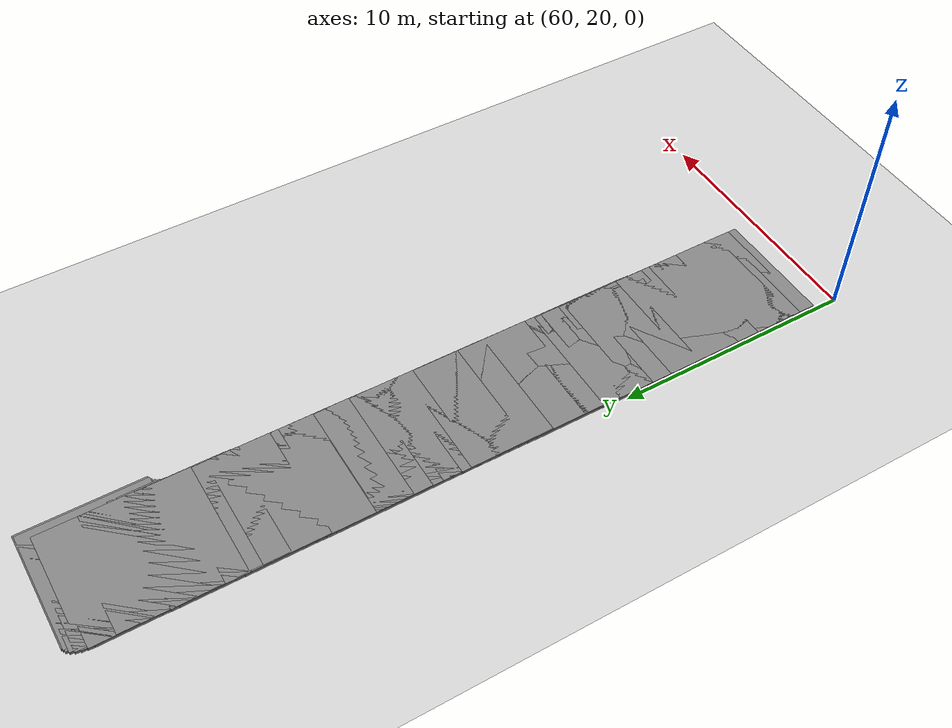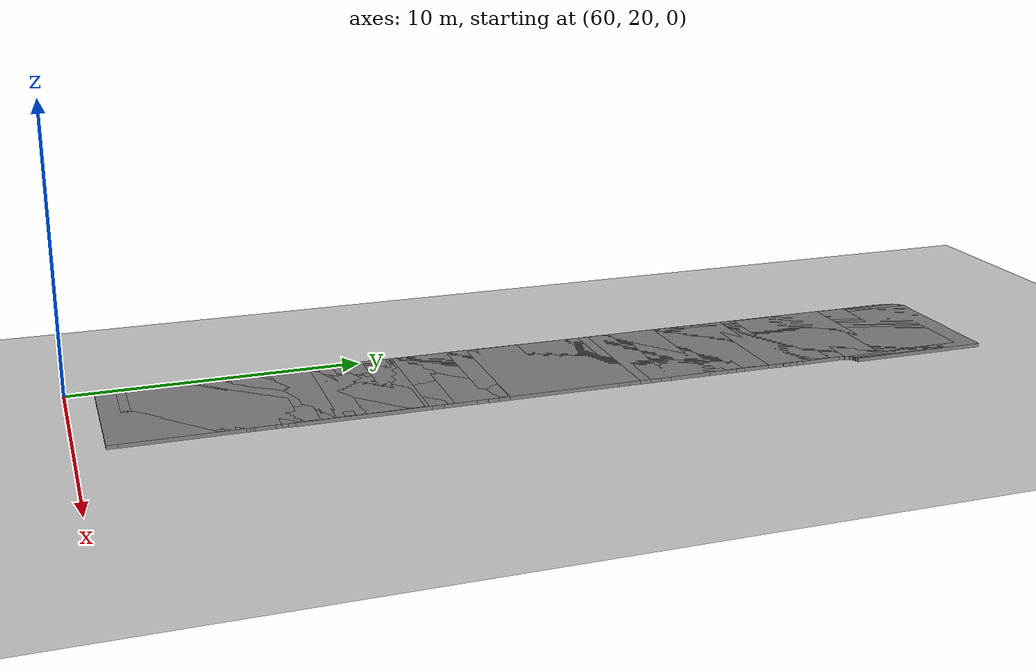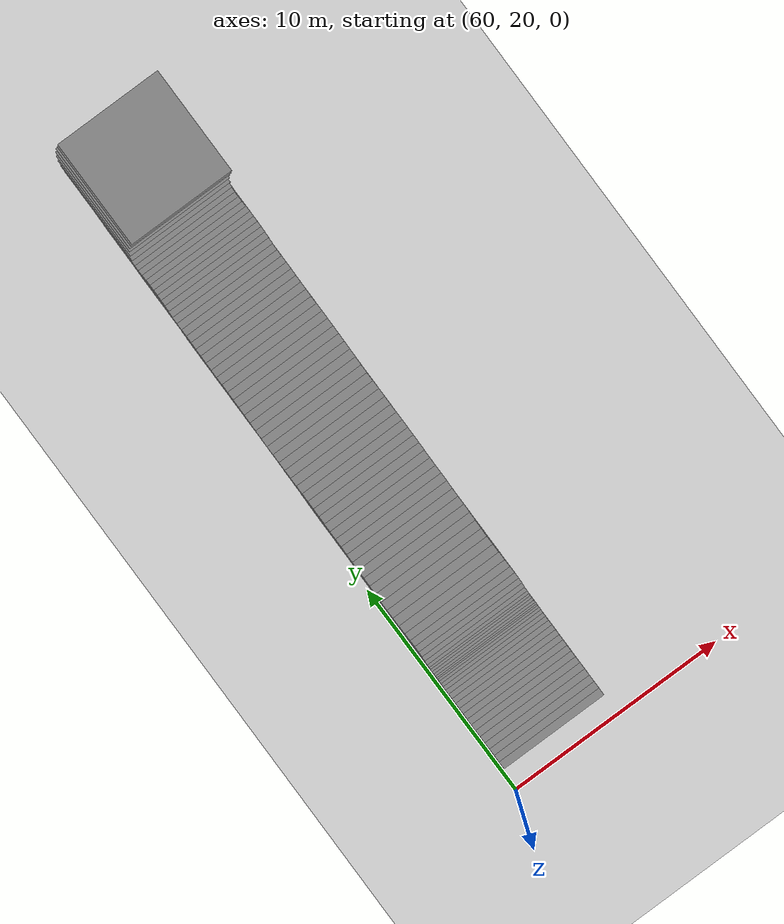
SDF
<sdf version="1.6">
 <world name="default">
  <include><uri>model://sun</uri></include>
  <include><uri>model://ground_plane</uri></include>
  <model name="road_segment_360">
   <static>true</static>
   <link name="link">
    <visual name="visual">
     <geometry><box><size>5.0 5.0 0.2</size></box></geometry>
     <material><ambient>0.5 0.5 0.5 1</ambient><diffuse>0.5 0.5 0.5 1</diffuse></material>
     <pose>63.15771334038004 49.263299828388355 0.0 0 0 0</pose>
    </visual>
    <collision name="collision">
     <geometry><box><size>5.0 5.0 0.2</size></box></geometry>
     <pose>63.15771334038004 49.263299828388355 0.0 0 0 0</pose>
    </collision>
   </link>
  </model>
  <model name="road_segment_361">
   <static>true</static>
   <link name="link">
    <visual name="visual">
     <geometry><box><size>5.0 5.0 0.2</size></box></geometry>
     <material><ambient>0.5 0.5 0.5 1</ambient><diffuse>0.5 0.5 0.5 1</diffuse></material>
     <pose>63.09268875512027 49.217945574894685 0.0 0 0 0</pose>
    </visual>
    <collision name="collision">
     <geometry><box><size>5.0 5.0 0.2</size></box></geometry>
     <pose>63.09268875512027 49.217945574894685 0.0 0 0 0</pose>
    </collision>
   </link>
  </model>
  <model name="road_segment_362">
   <static>true</static>
   <link name="link">
    <visual name="visual">
     <geometry><box><size>5.0 5.0 0.2</size></box></geometry>
     <material><ambient>0.5 0.5 0.5 1</ambient><diffuse>0.5 0.5 0.5 1</diffuse></material>
     <pose>62.99664537474874 49.17463430579471 0.0 0 0 0</pose>
    </visual>
    <collision name="collision">
     <geometry><box><size>5.0 5.0 0.2</size></box></geometry>
     <pose>62.99664537474874 49.17463430579471 0.0 0 0 0</pose>
    </collision>
   </link>
  </model>
  <model name="road_segment_363">
   <static>true</static>
   <link name="link">
    <visual name="visual">
     <geometry><box><size>5.0 5.0 0.2</size></box></geometry>
     <material><ambient>0.5 0.5 0.5 1</ambient><diffuse>0.5 0.5 0.5 1</diffuse></material>
     <pose>62.910022517359565 49.07452807060507 0.0 0 0 0</pose>
    </visual>
    <collision name="collision">
     <geometry><box><size>5.0 5.0 0.2</size></box></geometry>
     <pose>62.910022517359565 49.07452807060507 0.0 0 0 0</pose>
    </collision>
   </link>
  </model>
  <model name="road_segment_364">
   <static>true</static>
   <link name="link">
    <visual name="visual">
     <geometry><box><size>5.0 5.0 0.2</size></box></geometry>
     <material><ambient>0.5 0.5 0.5 1</ambient><diffuse>0.5 0.5 0.5 1</diffuse></material>
     <pose>62.835807177988976 48.92212143498897 0.0 0 0 0</pose>
    </visual>
    <collision name="collision">
     <geometry><box><size>5.0 5.0 0.2</size></box></geometry>
     <pose>62.835807177988976 48.92212143498897 0.0 0 0 0</pose>
    </collision>
   </link>
  </model>
  <model name="road_segment_365">
   <static>true</static>
   <link name="link">
    <visual name="visual">
     <geometry><box><size>5.0 5.0 0.2</size></box></geometry>
     <material><ambient>0.5 0.5 0.5 1</ambient><diffuse>0.5 0.5 0.5 1</diffuse></material>
     <pose>62.783190110747796 48.7251777396454 0.0 0 0 0</pose>
    </visual>
    <collision name="collision">
     <geometry><box><size>5.0 5.0 0.2</size></box></geometry>
     <pose>62.783190110747796 48.7251777396454 0.0 0 0 0</pose>
    </collision>
   </link>
  </model>
  <model name="road_segment_366">
   <static>true</static>
   <link name="link">
    <visual name="visual">
     <geometry><box><size>5.0 5.0 0.2</size></box></geometry>
     <material><ambient>0.5 0.5 0.5 1</ambient><diffuse>0.5 0.5 0.5 1</diffuse></material>
     <pose>62.75171177795824 48.50616981286149 0.0 0 0 0</pose>
    </visual>
    <collision name="collision">
     <geometry><box><size>5.0 5.0 0.2</size></box></geometry>
     <pose>62.75171177795824 48.50616981286149 0.0 0 0 0</pose>
    </collision>
   </link>
  </model>
  <model name="road_segment_367">
   <static>true</static>
   <link name="link">
    <visual name="visual">
     <geometry><box><size>5.0 5.0 0.2</size></box></geometry>
     <material><ambient>0.5 0.5 0.5 1</ambient><diffuse>0.5 0.5 0.5 1</diffuse></material>
     <pose>62.74366986810719 48.272452398460366 0.0 0 0 0</pose>
    </visual>
    <collision name="collision">
     <geometry><box><size>5.0 5.0 0.2</size></box></geometry>
     <pose>62.74366986810719 48.272452398460366 0.0 0 0 0</pose>
    </collision>
   </link>
  </model>
  <model name="road_segment_368">
   <static>true</static>
   <link name="link">
    <visual name="visual">
     <geometry><box><size>5.0 5.0 0.2</size></box></geometry>
     <material><ambient>0.5 0.5 0.5 1</ambient><diffuse>0.5 0.5 0.5 1</diffuse></material>
     <pose>62.74826524514627 48.02647707771157 0.0 0 0 0</pose>
    </visual>
    <collision name="collision">
     <geometry><box><size>5.0 5.0 0.2</size></box></geometry>
     <pose>62.74826524514627 48.02647707771157 0.0 0 0 0</pose>
    </collision>
   </link>
  </model>
  <model name="road_segment_369">
   <static>true</static>
   <link name="link">
    <visual name="visual">
     <geometry><box><size>5.0 5.0 0.2</size></box></geometry>
     <material><ambient>0.5 0.5 0.5 1</ambient><diffuse>0.5 0.5 0.5 1</diffuse></material>
     <pose>62.759064381227304 47.77968456321109 0.0 0 0 0</pose>
    </visual>
    <collision name="collision">
     <geometry><box><size>5.0 5.0 0.2</size></box></geometry>
     <pose>62.759064381227304 47.77968456321109 0.0 0 0 0</pose>
    </collision>
   </link>
  </model>
  <model name="road_segment_370">
   <static>true</static>
   <link name="link">
    <visual name="visual">
     <geometry><box><size>5.0 5.0 0.2</size></box></geometry>
     <material><ambient>0.5 0.5 0.5 1</ambient><diffuse>0.5 0.5 0.5 1</diffuse></material>
     <pose>62.7694039795979 47.523494320501044 0.0 0 0 0</pose>
    </visual>
    <collision name="collision">
     <geometry><box><size>5.0 5.0 0.2</size></box></geometry>
     <pose>62.7694039795979 47.523494320501044 0.0 0 0 0</pose>
    </collision>
   </link>
  </model>
  <model name="road_segment_371">
   <static>true</static>
   <link name="link">
    <visual name="visual">
     <geometry><box><size>5.0 5.0 0.2</size></box></geometry>
     <material><ambient>0.5 0.5 0.5 1</ambient><diffuse>0.5 0.5 0.5 1</diffuse></material>
     <pose>62.774229125508526 47.27261583721317 0.0 0 0 0</pose>
    </visual>
    <collision name="collision">
     <geometry><box><size>5.0 5.0 0.2</size></box></geometry>
     <pose>62.774229125508526 47.27261583721317 0.0 0 0 0</pose>
    </collision>
   </link>
  </model>
  <model name="road_segment_372">
   <static>true</static>
   <link name="link">
    <visual name="visual">
     <geometry><box><size>5.0 5.0 0.2</size></box></geometry>
     <material><ambient>0.5 0.5 0.5 1</ambient><diffuse>0.5 0.5 0.5 1</diffuse></material>
     <pose>62.77262074353832 47.01928577265576 0.0 0 0 0</pose>
    </visual>
    <collision name="collision">
     <geometry><box><size>5.0 5.0 0.2</size></box></geometry>
     <pose>62.77262074353832 47.01928577265576 0.0 0 0 0</pose>
    </collision>
   </link>
  </model>
  <model name="road_segment_373">
   <static>true</static>
   <link name="link">
    <visual name="visual">
     <geometry><box><size>5.0 5.0 0.2</size></box></geometry>
     <material><ambient>0.5 0.5 0.5 1</ambient><diffuse>0.5 0.5 0.5 1</diffuse></material>
     <pose>62.77055282385767 46.76350412682881 0.0 0 0 0</pose>
    </visual>
    <collision name="collision">
     <geometry><box><size>5.0 5.0 0.2</size></box></geometry>
     <pose>62.77055282385767 46.76350412682881 0.0 0 0 0</pose>
    </collision>
   </link>
  </model>
  <model name="road_segment_374">
   <static>true</static>
   <link name="link">
    <visual name="visual">
     <geometry><box><size>5.0 5.0 0.2</size></box></geometry>
     <material><ambient>0.5 0.5 0.5 1</ambient><diffuse>0.5 0.5 0.5 1</diffuse></material>
     <pose>62.766187215657474 46.4987333496754 0.0 0 0 0</pose>
    </visual>
    <collision name="collision">
     <geometry><box><size>5.0 5.0 0.2</size></box></geometry>
     <pose>62.766187215657474 46.4987333496754 0.0 0 0 0</pose>
    </collision>
   </link>
  </model>
  <model name="road_segment_375">
   <static>true</static>
   <link name="link">
    <visual name="visual">
     <geometry><box><size>5.0 5.0 0.2</size></box></geometry>
     <material><ambient>0.5 0.5 0.5 1</ambient><diffuse>0.5 0.5 0.5 1</diffuse></material>
     <pose>62.757226230418205 46.220887472422625 0.0 0 0 0</pose>
    </visual>
    <collision name="collision">
     <geometry><box><size>5.0 5.0 0.2</size></box></geometry>
     <pose>62.757226230418205 46.220887472422625 0.0 0 0 0</pose>
    </collision>
   </link>
  </model>
  <model name="road_segment_376">
   <static>true</static>
   <link name="link">
    <visual name="visual">
     <geometry><box><size>5.0 5.0 0.2</size></box></geometry>
     <material><ambient>0.5 0.5 0.5 1</ambient><diffuse>0.5 0.5 0.5 1</diffuse></material>
     <pose>62.738155415647235 45.9373212388646 0.0 0 0 0</pose>
    </visual>
    <collision name="collision">
     <geometry><box><size>5.0 5.0 0.2</size></box></geometry>
     <pose>62.738155415647235 45.9373212388646 0.0 0 0 0</pose>
    </collision>
   </link>
  </model>
  <model name="road_segment_377">
   <static>true</static>
   <link name="link">
    <visual name="visual">
     <geometry><box><size>5.0 5.0 0.2</size></box></geometry>
     <material><ambient>0.5 0.5 0.5 1</ambient><diffuse>0.5 0.5 0.5 1</diffuse></material>
     <pose>62.726207435306435 45.636185339543985 0.0 0 0 0</pose>
    </visual>
    <collision name="collision">
     <geometry><box><size>5.0 5.0 0.2</size></box></geometry>
     <pose>62.726207435306435 45.636185339543985 0.0 0 0 0</pose>
    </collision>
   </link>
  </model>
  <model name="road_segment_378">
   <static>true</static>
   <link name="link">
    <visual name="visual">
     <geometry><box><size>5.0 5.0 0.2</size></box></geometry>
     <material><ambient>0.5 0.5 0.5 1</ambient><diffuse>0.5 0.5 0.5 1</diffuse></material>
     <pose>62.72299067139866 45.3317806651949 0.0 0 0 0</pose>
    </visual>
    <collision name="collision">
     <geometry><box><size>5.0 5.0 0.2</size></box></geometry>
     <pose>62.72299067139866 45.3317806651949 0.0 0 0 0</pose>
    </collision>
   </link>
  </model>
  <model name="road_segment_379">
   <static>true</static>
   <link name="link">
    <visual name="visual">
     <geometry><box><size>5.0 5.0 0.2</size></box></geometry>
     <material><ambient>0.5 0.5 0.5 1</ambient><diffuse>0.5 0.5 0.5 1</diffuse></material>
     <pose>62.72965396811839 45.01307510010443 0.0 0 0 0</pose>
    </visual>
    <collision name="collision">
     <geometry><box><size>5.0 5.0 0.2</size></box></geometry>
     <pose>62.72965396811839 45.01307510010443 0.0 0 0 0</pose>
    </collision>
   </link>
  </model>
  <model name="road_segment_380">
   <static>true</static>
   <link name="link">
    <visual name="visual">
     <geometry><box><size>5.0 5.0 0.2</size></box></geometry>
     <material><ambient>0.5 0.5 0.5 1</ambient><diffuse>0.5 0.5 0.5 1</diffuse></material>
     <pose>62.72919443040795 44.689466372474904 0.0 0 0 0</pose>
    </visual>
    <collision name="collision">
     <geometry><box><size>5.0 5.0 0.2</size></box></geometry>
     <pose>62.72919443040795 44.689466372474904 0.0 0 0 0</pose>
    </collision>
   </link>
  </model>
  <model name="road_segment_381">
   <static>true</static>
   <link name="link">
    <visual name="visual">
     <geometry><box><size>5.0 5.0 0.2</size></box></geometry>
     <material><ambient>0.5 0.5 0.5 1</ambient><diffuse>0.5 0.5 0.5 1</diffuse></material>
     <pose>62.724139515658436 44.35891149791985 0.0 0 0 0</pose>
    </visual>
    <collision name="collision">
     <geometry><box><size>5.0 5.0 0.2</size></box></geometry>
     <pose>62.724139515658436 44.35891149791985 0.0 0 0 0</pose>
    </collision>
   </link>
  </model>
  <model name="road_segment_382">
   <static>true</static>
   <link name="link">
    <visual name="visual">
     <geometry><box><size>5.0 5.0 0.2</size></box></geometry>
     <material><ambient>0.5 0.5 0.5 1</ambient><diffuse>0.5 0.5 0.5 1</diffuse></material>
     <pose>62.718854832037366 44.02753942959861 0.0 0 0 0</pose>
    </visual>
    <collision name="collision">
     <geometry><box><size>5.0 5.0 0.2</size></box></geometry>
     <pose>62.718854832037366 44.02753942959861 0.0 0 0 0</pose>
    </collision>
   </link>
  </model>
  <model name="road_segment_383">
   <static>true</static>
   <link name="link">
    <visual name="visual">
     <geometry><box><size>5.0 5.0 0.2</size></box></geometry>
     <material><ambient>0.5 0.5 0.5 1</ambient><diffuse>0.5 0.5 0.5 1</diffuse></material>
     <pose>62.719544138586706 43.67573751736216 0.0 0 0 0</pose>
    </visual>
    <collision name="collision">
     <geometry><box><size>5.0 5.0 0.2</size></box></geometry>
     <pose>62.719544138586706 43.67573751736216 0.0 0 0 0</pose>
    </collision>
   </link>
  </model>
  <model name="road_segment_384">
   <static>true</static>
   <link name="link">
    <visual name="visual">
     <geometry><box><size>5.0 5.0 0.2</size></box></geometry>
     <material><ambient>0.5 0.5 0.5 1</ambient><diffuse>0.5 0.5 0.5 1</diffuse></material>
     <pose>62.714029686126736 43.32025823322866 0.0 0 0 0</pose>
    </visual>
    <collision name="collision">
     <geometry><box><size>5.0 5.0 0.2</size></box></geometry>
     <pose>62.714029686126736 43.32025823322866 0.0 0 0 0</pose>
    </collision>
   </link>
  </model>
  <model name="road_segment_385">
   <static>true</static>
   <link name="link">
    <visual name="visual">
     <geometry><box><size>5.0 5.0 0.2</size></box></geometry>
     <material><ambient>0.5 0.5 0.5 1</ambient><diffuse>0.5 0.5 0.5 1</diffuse></material>
     <pose>62.70874500253832 42.961918770942525 0.0 0 0 0</pose>
    </visual>
    <collision name="collision">
     <geometry><box><size>5.0 5.0 0.2</size></box></geometry>
     <pose>62.70874500253832 42.961918770942525 0.0 0 0 0</pose>
    </collision>
   </link>
  </model>
  <model name="road_segment_386">
   <static>true</static>
   <link name="link">
    <visual name="visual">
     <geometry><box><size>5.0 5.0 0.2</size></box></geometry>
     <material><ambient>0.5 0.5 0.5 1</ambient><diffuse>0.5 0.5 0.5 1</diffuse></material>
     <pose>62.7158678369685 42.59418158045409 0.0 0 0 0</pose>
    </visual>
    <collision name="collision">
     <geometry><box><size>5.0 5.0 0.2</size></box></geometry>
     <pose>62.7158678369685 42.59418158045409 0.0 0 0 0</pose>
    </collision>
   </link>
  </model>
  <model name="road_segment_387">
   <static>true</static>
   <link name="link">
    <visual name="visual">
     <geometry><box><size>5.0 5.0 0.2</size></box></geometry>
     <material><ambient>0.5 0.5 0.5 1</ambient><diffuse>0.5 0.5 0.5 1</diffuse></material>
     <pose>62.718854832037366 42.21827245239812 0.0 0 0 0</pose>
    </visual>
    <collision name="collision">
     <geometry><box><size>5.0 5.0 0.2</size></box></geometry>
     <pose>62.718854832037366 42.21827245239812 0.0 0 0 0</pose>
    </collision>
   </link>
  </model>
  <model name="road_segment_388">
   <static>true</static>
   <link name="link">
    <visual name="visual">
     <geometry><box><size>5.0 5.0 0.2</size></box></geometry>
     <material><ambient>0.5 0.5 0.5 1</ambient><diffuse>0.5 0.5 0.5 1</diffuse></material>
     <pose>62.71770598777759 41.841546130590466 0.0 0 0 0</pose>
    </visual>
    <collision name="collision">
     <geometry><box><size>5.0 5.0 0.2</size></box></geometry>
     <pose>62.71770598777759 41.841546130590466 0.0 0 0 0</pose>
    </collision>
   </link>
  </model>
  <model name="road_segment_389">
   <static>true</static>
   <link name="link">
    <visual name="visual">
     <geometry><box><size>5.0 5.0 0.2</size></box></geometry>
     <material><ambient>0.5 0.5 0.5 1</ambient><diffuse>0.5 0.5 0.5 1</diffuse></material>
     <pose>62.71517853038651 41.46155103374709 0.0 0 0 0</pose>
    </visual>
    <collision name="collision">
     <geometry><box><size>5.0 5.0 0.2</size></box></geometry>
     <pose>62.71517853038651 41.46155103374709 0.0 0 0 0</pose>
    </collision>
   </link>
  </model>
  <model name="road_segment_390">
   <static>true</static>
   <link name="link">
    <visual name="visual">
     <geometry><box><size>5.0 5.0 0.2</size></box></geometry>
     <material><ambient>0.5 0.5 0.5 1</ambient><diffuse>0.5 0.5 0.5 1</diffuse></material>
     <pose>62.7115022287683 41.08114734003514 0.0 0 0 0</pose>
    </visual>
    <collision name="collision">
     <geometry><box><size>5.0 5.0 0.2</size></box></geometry>
     <pose>62.7115022287683 41.08114734003514 0.0 0 0 0</pose>
    </collision>
   </link>
  </model>
  <model name="road_segment_391">
   <static>true</static>
   <link name="link">
    <visual name="visual">
     <geometry><box><size>5.0 5.0 0.2</size></box></geometry>
     <material><ambient>0.5 0.5 0.5 1</ambient><diffuse>0.5 0.5 0.5 1</diffuse></material>
     <pose>62.70782592711745 40.69706627441162 0.0 0 0 0</pose>
    </visual>
    <collision name="collision">
     <geometry><box><size>5.0 5.0 0.2</size></box></geometry>
     <pose>62.70782592711745 40.69706627441162 0.0 0 0 0</pose>
    </collision>
   </link>
  </model>
  <model name="road_segment_392">
   <static>true</static>
   <link name="link">
    <visual name="visual">
     <geometry><box><size>5.0 5.0 0.2</size></box></geometry>
     <material><ambient>0.5 0.5 0.5 1</ambient><diffuse>0.5 0.5 0.5 1</diffuse></material>
     <pose>62.70024355497683 40.309716433766894 0.0 0 0 0</pose>
    </visual>
    <collision name="collision">
     <geometry><box><size>5.0 5.0 0.2</size></box></geometry>
     <pose>62.70024355497683 40.309716433766894 0.0 0 0 0</pose>
    </collision>
   </link>
  </model>
  <model name="road_segment_393">
   <static>true</static>
   <link name="link">
    <visual name="visual">
     <geometry><box><size>5.0 5.0 0.2</size></box></geometry>
     <material><ambient>0.5 0.5 0.5 1</ambient><diffuse>0.5 0.5 0.5 1</diffuse></material>
     <pose>62.692431413997326 39.9174634305831 0.0 0 0 0</pose>
    </visual>
    <collision name="collision">
     <geometry><box><size>5.0 5.0 0.2</size></box></geometry>
     <pose>62.692431413997326 39.9174634305831 0.0 0 0 0</pose>
    </collision>
   </link>
  </model>
  <model name="road_segment_394">
   <static>true</static>
   <link name="link">
    <visual name="visual">
     <geometry><box><size>5.0 5.0 0.2</size></box></geometry>
     <material><ambient>0.5 0.5 0.5 1</ambient><diffuse>0.5 0.5 0.5 1</diffuse></material>
     <pose>62.688065805797144 39.522758846122514 0.0 0 0 0</pose>
    </visual>
    <collision name="collision">
     <geometry><box><size>5.0 5.0 0.2</size></box></geometry>
     <pose>62.688065805797144 39.522758846122514 0.0 0 0 0</pose>
    </collision>
   </link>
  </model>
  <model name="road_segment_395">
   <static>true</static>
   <link name="link">
    <visual name="visual">
     <geometry><box><size>5.0 5.0 0.2</size></box></geometry>
     <material><ambient>0.5 0.5 0.5 1</ambient><diffuse>0.5 0.5 0.5 1</diffuse></material>
     <pose>62.68622765498804 39.12315109912285 0.0 0 0 0</pose>
    </visual>
    <collision name="collision">
     <geometry><box><size>5.0 5.0 0.2</size></box></geometry>
     <pose>62.68622765498804 39.12315109912285 0.0 0 0 0</pose>
    </collision>
   </link>
  </model>
  <model name="road_segment_396">
   <static>true</static>
   <link name="link">
    <visual name="visual">
     <geometry><box><size>5.0 5.0 0.2</size></box></geometry>
     <material><ambient>0.5 0.5 0.5 1</ambient><diffuse>0.5 0.5 0.5 1</diffuse></material>
     <pose>62.69197187628689 38.725586336524145 0.0 0 0 0</pose>
    </visual>
    <collision name="collision">
     <geometry><box><size>5.0 5.0 0.2</size></box></geometry>
     <pose>62.69197187628689 38.725586336524145 0.0 0 0 0</pose>
    </collision>
   </link>
  </model>
  <model name="road_segment_397">
   <static>true</static>
   <link name="link">
    <visual name="visual">
     <geometry><box><size>5.0 5.0 0.2</size></box></geometry>
     <material><ambient>0.5 0.5 0.5 1</ambient><diffuse>0.5 0.5 0.5 1</diffuse></material>
     <pose>62.693810027096 38.33455912396786 0.0 0 0 0</pose>
    </visual>
    <collision name="collision">
     <geometry><box><size>5.0 5.0 0.2</size></box></geometry>
     <pose>62.693810027096 38.33455912396786 0.0 0 0 0</pose>
    </collision>
   </link>
  </model>
  <model name="road_segment_398">
   <static>true</static>
   <link name="link">
    <visual name="visual">
     <geometry><box><size>5.0 5.0 0.2</size></box></geometry>
     <material><ambient>0.5 0.5 0.5 1</ambient><diffuse>0.5 0.5 0.5 1</diffuse></material>
     <pose>62.691742107448 37.93944594263144 0.0 0 0 0</pose>
    </visual>
    <collision name="collision">
     <geometry><box><size>5.0 5.0 0.2</size></box></geometry>
     <pose>62.691742107448 37.93944594263144 0.0 0 0 0</pose>
    </collision>
   </link>
  </model>
  <model name="road_segment_399">
   <static>true</static>
   <link name="link">
    <visual name="visual">
     <geometry><box><size>5.0 5.0 0.2</size></box></geometry>
     <material><ambient>0.5 0.5 0.5 1</ambient><diffuse>0.5 0.5 0.5 1</diffuse></material>
     <pose>62.69082303202712 37.54964452071717 0.0 0 0 0</pose>
    </visual>
    <collision name="collision">
     <geometry><box><size>5.0 5.0 0.2</size></box></geometry>
     <pose>62.69082303202712 37.54964452071717 0.0 0 0 0</pose>
    </collision>
   </link>
  </model>
  <model name="road_segment_400">
   <static>true</static>
   <link name="link">
    <visual name="visual">
     <geometry><box><size>5.0 5.0 0.2</size></box></geometry>
     <material><ambient>0.5 0.5 0.5 1</ambient><diffuse>0.5 0.5 0.5 1</diffuse></material>
     <pose>62.694958871388415 37.16433766445889 0.0 0 0 0</pose>
    </visual>
    <collision name="collision">
     <geometry><box><size>5.0 5.0 0.2</size></box></geometry>
     <pose>62.694958871388415 37.16433766445889 0.0 0 0 0</pose>
    </collision>
   </link>
  </model>
  <model name="road_segment_401">
   <static>true</static>
   <link name="link">
    <visual name="visual">
     <geometry><box><size>5.0 5.0 0.2</size></box></geometry>
     <material><ambient>0.5 0.5 0.5 1</ambient><diffuse>0.5 0.5 0.5 1</diffuse></material>
     <pose>62.69679702219753 36.785159761381706 0.0 0 0 0</pose>
    </visual>
    <collision name="collision">
     <geometry><box><size>5.0 5.0 0.2</size></box></geometry>
     <pose>62.69679702219753 36.785159761381706 0.0 0 0 0</pose>
    </collision>
   </link>
  </model>
  <model name="road_segment_402">
   <static>true</static>
   <link name="link">
    <visual name="visual">
     <geometry><box><size>5.0 5.0 0.2</size></box></geometry>
     <material><ambient>0.5 0.5 0.5 1</ambient><diffuse>0.5 0.5 0.5 1</diffuse></material>
     <pose>62.697026791036414 36.40843343956679 0.0 0 0 0</pose>
    </visual>
    <collision name="collision">
     <geometry><box><size>5.0 5.0 0.2</size></box></geometry>
     <pose>62.697026791036414 36.40843343956679 0.0 0 0 0</pose>
    </collision>
   </link>
  </model>
  <model name="road_segment_403">
   <static>true</static>
   <link name="link">
    <visual name="visual">
     <geometry><box><size>5.0 5.0 0.2</size></box></geometry>
     <material><ambient>0.5 0.5 0.5 1</ambient><diffuse>0.5 0.5 0.5 1</diffuse></material>
     <pose>62.69541840906621 36.03211571463498 0.0 0 0 0</pose>
    </visual>
    <collision name="collision">
     <geometry><box><size>5.0 5.0 0.2</size></box></geometry>
     <pose>62.69541840906621 36.03211571463498 0.0 0 0 0</pose>
    </collision>
   </link>
  </model>
  <model name="road_segment_404">
   <static>true</static>
   <link name="link">
    <visual name="visual">
     <geometry><box><size>5.0 5.0 0.2</size></box></geometry>
     <material><ambient>0.5 0.5 0.5 1</ambient><diffuse>0.5 0.5 0.5 1</diffuse></material>
     <pose>62.6935802582571 35.65702378033794 0.0 0 0 0</pose>
    </visual>
    <collision name="collision">
     <geometry><box><size>5.0 5.0 0.2</size></box></geometry>
     <pose>62.6935802582571 35.65702378033794 0.0 0 0 0</pose>
    </collision>
   </link>
  </model>
  <model name="road_segment_405">
   <static>true</static>
   <link name="link">
    <visual name="visual">
     <geometry><box><size>5.0 5.0 0.2</size></box></geometry>
     <material><ambient>0.5 0.5 0.5 1</ambient><diffuse>0.5 0.5 0.5 1</diffuse></material>
     <pose>62.68645742382694 35.282340442916734 0.0 0 0 0</pose>
    </visual>
    <collision name="collision">
     <geometry><box><size>5.0 5.0 0.2</size></box></geometry>
     <pose>62.68645742382694 35.282340442916734 0.0 0 0 0</pose>
    </collision>
   </link>
  </model>
  <model name="road_segment_406">
   <static>true</static>
   <link name="link">
    <visual name="visual">
     <geometry><box><size>5.0 5.0 0.2</size></box></geometry>
     <material><ambient>0.5 0.5 0.5 1</ambient><diffuse>0.5 0.5 0.5 1</diffuse></material>
     <pose>62.68324065988651 34.90275394296371 0.0 0 0 0</pose>
    </visual>
    <collision name="collision">
     <geometry><box><size>5.0 5.0 0.2</size></box></geometry>
     <pose>62.68324065988651 34.90275394296371 0.0 0 0 0</pose>
    </collision>
   </link>
  </model>
  <model name="road_segment_407">
   <static>true</static>
   <link name="link">
    <visual name="visual">
     <geometry><box><size>5.0 5.0 0.2</size></box></geometry>
     <material><ambient>0.5 0.5 0.5 1</ambient><diffuse>0.5 0.5 0.5 1</diffuse></material>
     <pose>62.68324065988651 34.52194165236866 0.0 0 0 0</pose>
    </visual>
    <collision name="collision">
     <geometry><box><size>5.0 5.0 0.2</size></box></geometry>
     <pose>62.68324065988651 34.52194165236866 0.0 0 0 0</pose>
    </collision>
   </link>
  </model>
  <model name="road_segment_408">
   <static>true</static>
   <link name="link">
    <visual name="visual">
     <geometry><box><size>5.0 5.0 0.2</size></box></geometry>
     <material><ambient>0.5 0.5 0.5 1</ambient><diffuse>0.5 0.5 0.5 1</diffuse></material>
     <pose>62.683470428758056 34.138269183620984 0.0 0 0 0</pose>
    </visual>
    <collision name="collision">
     <geometry><box><size>5.0 5.0 0.2</size></box></geometry>
     <pose>62.683470428758056 34.138269183620984 0.0 0 0 0</pose>
    </collision>
   </link>
  </model>
  <model name="road_segment_409">
   <static>true</static>
   <link name="link">
    <visual name="visual">
     <geometry><box><size>5.0 5.0 0.2</size></box></geometry>
     <material><ambient>0.5 0.5 0.5 1</ambient><diffuse>0.5 0.5 0.5 1</diffuse></material>
     <pose>62.678415513975885 33.75377952112889 0.0 0 0 0</pose>
    </visual>
    <collision name="collision">
     <geometry><box><size>5.0 5.0 0.2</size></box></geometry>
     <pose>62.678415513975885 33.75377952112889 0.0 0 0 0</pose>
    </collision>
   </link>
  </model>
  <model name="road_segment_410">
   <static>true</static>
   <link name="link">
    <visual name="visual">
     <geometry><box><size>5.0 5.0 0.2</size></box></geometry>
     <material><ambient>0.5 0.5 0.5 1</ambient><diffuse>0.5 0.5 0.5 1</diffuse></material>
     <pose>62.67221175496659 33.363569502331536 0.0 0 0 0</pose>
    </visual>
    <collision name="collision">
     <geometry><box><size>5.0 5.0 0.2</size></box></geometry>
     <pose>62.67221175496659 33.363569502331536 0.0 0 0 0</pose>
    </collision>
   </link>
  </model>
  <model name="road_segment_411">
   <static>true</static>
   <link name="link">
    <visual name="visual">
     <geometry><box><size>5.0 5.0 0.2</size></box></geometry>
     <material><ambient>0.5 0.5 0.5 1</ambient><diffuse>0.5 0.5 0.5 1</diffuse></material>
     <pose>62.66991406644705 32.97254228977525 0.0 0 0 0</pose>
    </visual>
    <collision name="collision">
     <geometry><box><size>5.0 5.0 0.2</size></box></geometry>
     <pose>62.66991406644705 32.97254228977525 0.0 0 0 0</pose>
    </collision>
   </link>
  </model>
  <model name="road_segment_412">
   <static>true</static>
   <link name="link">
    <visual name="visual">
     <geometry><box><size>5.0 5.0 0.2</size></box></geometry>
     <material><ambient>0.5 0.5 0.5 1</ambient><diffuse>0.5 0.5 0.5 1</diffuse></material>
     <pose>62.668535453315734 32.57375173653452 0.0 0 0 0</pose>
    </visual>
    <collision name="collision">
     <geometry><box><size>5.0 5.0 0.2</size></box></geometry>
     <pose>62.668535453315734 32.57375173653452 0.0 0 0 0</pose>
    </collision>
   </link>
  </model>
  <model name="road_segment_413">
   <static>true</static>
   <link name="link">
    <visual name="visual">
     <geometry><box><size>5.0 5.0 0.2</size></box></geometry>
     <material><ambient>0.5 0.5 0.5 1</ambient><diffuse>0.5 0.5 0.5 1</diffuse></material>
     <pose>62.66072331233623 32.178229958322255 0.0 0 0 0</pose>
    </visual>
    <collision name="collision">
     <geometry><box><size>5.0 5.0 0.2</size></box></geometry>
     <pose>62.66072331233623 32.178229958322255 0.0 0 0 0</pose>
    </collision>
   </link>
  </model>
  <model name="road_segment_414">
   <static>true</static>
   <link name="link">
    <visual name="visual">
     <geometry><box><size>5.0 5.0 0.2</size></box></geometry>
     <material><ambient>0.5 0.5 0.5 1</ambient><diffuse>0.5 0.5 0.5 1</diffuse></material>
     <pose>62.65268140251783 31.776579226936153 0.0 0 0 0</pose>
    </visual>
    <collision name="collision">
     <geometry><box><size>5.0 5.0 0.2</size></box></geometry>
     <pose>62.65268140251783 31.776579226936153 0.0 0 0 0</pose>
    </collision>
   </link>
  </model>
  <model name="road_segment_415">
   <static>true</static>
   <link name="link">
    <visual name="visual">
     <geometry><box><size>5.0 5.0 0.2</size></box></geometry>
     <material><ambient>0.5 0.5 0.5 1</ambient><diffuse>0.5 0.5 0.5 1</diffuse></material>
     <pose>62.6460181057981 31.383509029993423 0.0 0 0 0</pose>
    </visual>
    <collision name="collision">
     <geometry><box><size>5.0 5.0 0.2</size></box></geometry>
     <pose>62.6460181057981 31.383509029993423 0.0 0 0 0</pose>
    </collision>
   </link>
  </model>
  <model name="road_segment_416">
   <static>true</static>
   <link name="link">
    <visual name="visual">
     <geometry><box><size>5.0 5.0 0.2</size></box></geometry>
     <material><ambient>0.5 0.5 0.5 1</ambient><diffuse>0.5 0.5 0.5 1</diffuse></material>
     <pose>62.647396718896765 30.988804445532836 0.0 0 0 0</pose>
    </visual>
    <collision name="collision">
     <geometry><box><size>5.0 5.0 0.2</size></box></geometry>
     <pose>62.647396718896765 30.988804445532836 0.0 0 0 0</pose>
    </collision>
   </link>
  </model>
  <model name="road_segment_417">
   <static>true</static>
   <link name="link">
    <visual name="visual">
     <geometry><box><size>5.0 5.0 0.2</size></box></geometry>
     <material><ambient>0.5 0.5 0.5 1</ambient><diffuse>0.5 0.5 0.5 1</diffuse></material>
     <pose>62.64877533202808 30.5904224891752 0.0 0 0 0</pose>
    </visual>
    <collision name="collision">
     <geometry><box><size>5.0 5.0 0.2</size></box></geometry>
     <pose>62.64877533202808 30.5904224891752 0.0 0 0 0</pose>
    </collision>
   </link>
  </model>
  <model name="road_segment_418">
   <static>true</static>
   <link name="link">
    <visual name="visual">
     <geometry><box><size>5.0 5.0 0.2</size></box></geometry>
     <material><ambient>0.5 0.5 0.5 1</ambient><diffuse>0.5 0.5 0.5 1</diffuse></material>
     <pose>62.65865539268823 30.201846857888448 0.0 0 0 0</pose>
    </visual>
    <collision name="collision">
     <geometry><box><size>5.0 5.0 0.2</size></box></geometry>
     <pose>62.65865539268823 30.201846857888448 0.0 0 0 0</pose>
    </collision>
   </link>
  </model>
  <model name="road_segment_419">
   <static>true</static>
   <link name="link">
    <visual name="visual">
     <geometry><box><size>5.0 5.0 0.2</size></box></geometry>
     <material><ambient>0.5 0.5 0.5 1</ambient><diffuse>0.5 0.5 0.5 1</diffuse></material>
     <pose>62.66508892053642 29.85535670507416 0.0 0 0 0</pose>
    </visual>
    <collision name="collision">
     <geometry><box><size>5.0 5.0 0.2</size></box></geometry>
     <pose>62.66508892053642 29.85535670507416 0.0 0 0 0</pose>
    </collision>
   </link>
  </model>
  <model name="road_segment_420">
   <static>true</static>
   <link name="link">
    <visual name="visual">
     <geometry><box><size>5.0 5.0 0.2</size></box></geometry>
     <material><ambient>0.5 0.5 0.5 1</ambient><diffuse>0.5 0.5 0.5 1</diffuse></material>
     <pose>62.67060337299638 29.54850044945554 0.0 0 0 0</pose>
    </visual>
    <collision name="collision">
     <geometry><box><size>5.0 5.0 0.2</size></box></geometry>
     <pose>62.67060337299638 29.54850044945554 0.0 0 0 0</pose>
    </collision>
   </link>
  </model>
  <model name="road_segment_421">
   <static>true</static>
   <link name="link">
    <visual name="visual">
     <geometry><box><size>5.0 5.0 0.2</size></box></geometry>
     <material><ambient>0.5 0.5 0.5 1</ambient><diffuse>0.5 0.5 0.5 1</diffuse></material>
     <pose>62.674968981196564 29.276374928493514 0.0 0 0 0</pose>
    </visual>
    <collision name="collision">
     <geometry><box><size>5.0 5.0 0.2</size></box></geometry>
     <pose>62.674968981196564 29.276374928493514 0.0 0 0 0</pose>
    </collision>
   </link>
  </model>
  <model name="road_segment_422">
   <static>true</static>
   <link name="link">
    <visual name="visual">
     <geometry><box><size>5.0 5.0 0.2</size></box></geometry>
     <material><ambient>0.5 0.5 0.5 1</ambient><diffuse>0.5 0.5 0.5 1</diffuse></material>
     <pose>62.66968429760815 29.043474707851324 0.0 0 0 0</pose>
    </visual>
    <collision name="collision">
     <geometry><box><size>5.0 5.0 0.2</size></box></geometry>
     <pose>62.66968429760815 29.043474707851324 0.0 0 0 0</pose>
    </collision>
   </link>
  </model>
  <model name="road_segment_423">
   <static>true</static>
   <link name="link">
    <visual name="visual">
     <geometry><box><size>5.0 5.0 0.2</size></box></geometry>
     <material><ambient>0.5 0.5 0.5 1</ambient><diffuse>0.5 0.5 0.5 1</diffuse></material>
     <pose>62.65520885987627 28.837950478057117 0.0 0 0 0</pose>
    </visual>
    <collision name="collision">
     <geometry><box><size>5.0 5.0 0.2</size></box></geometry>
     <pose>62.65520885987627 28.837950478057117 0.0 0 0 0</pose>
    </collision>
   </link>
  </model>
  <model name="road_segment_424">
   <static>true</static>
   <link name="link">
    <visual name="visual">
     <geometry><box><size>5.0 5.0 0.2</size></box></geometry>
     <material><ambient>0.5 0.5 0.5 1</ambient><diffuse>0.5 0.5 0.5 1</diffuse></material>
     <pose>62.6418822664368 28.659802239110903 0.0 0 0 0</pose>
    </visual>
    <collision name="collision">
     <geometry><box><size>5.0 5.0 0.2</size></box></geometry>
     <pose>62.6418822664368 28.659802239110903 0.0 0 0 0</pose>
    </collision>
   </link>
  </model>
  <model name="road_segment_425">
   <static>true</static>
   <link name="link">
    <visual name="visual">
     <geometry><box><size>5.0 5.0 0.2</size></box></geometry>
     <material><ambient>0.5 0.5 0.5 1</ambient><diffuse>0.5 0.5 0.5 1</diffuse></material>
     <pose>62.63820596478594 28.52864264116896 0.0 0 0 0</pose>
    </visual>
    <collision name="collision">
     <geometry><box><size>5.0 5.0 0.2</size></box></geometry>
     <pose>62.63820596478594 28.52864264116896 0.0 0 0 0</pose>
    </collision>
   </link>
  </model>
  <model name="road_segment_426">
   <static>true</static>
   <link name="link">
    <visual name="visual">
     <geometry><box><size>5.0 5.0 0.2</size></box></geometry>
     <material><ambient>0.5 0.5 0.5 1</ambient><diffuse>0.5 0.5 0.5 1</diffuse></material>
     <pose>62.63361058774686 28.433848165401482 0.0 0 0 0</pose>
    </visual>
    <collision name="collision">
     <geometry><box><size>5.0 5.0 0.2</size></box></geometry>
     <pose>62.63361058774686 28.433848165401482 0.0 0 0 0</pose>
    </collision>
   </link>
  </model>
  <model name="road_segment_427">
   <static>true</static>
   <link name="link">
    <visual name="visual">
     <geometry><box><size>5.0 5.0 0.2</size></box></geometry>
     <material><ambient>0.5 0.5 0.5 1</ambient><diffuse>0.5 0.5 0.5 1</diffuse></material>
     <pose>62.62510914021803 28.325978589527388 0.0 0 0 0</pose>
    </visual>
    <collision name="collision">
     <geometry><box><size>5.0 5.0 0.2</size></box></geometry>
     <pose>62.62510914021803 28.325978589527388 0.0 0 0 0</pose>
    </collision>
   </link>
  </model>
  <model name="road_segment_428">
   <static>true</static>
   <link name="link">
    <visual name="visual">
     <geometry><box><size>5.0 5.0 0.2</size></box></geometry>
     <material><ambient>0.5 0.5 0.5 1</ambient><diffuse>0.5 0.5 0.5 1</diffuse></material>
     <pose>62.625798446767355 28.208302688567894 0.0 0 0 0</pose>
    </visual>
    <collision name="collision">
     <geometry><box><size>5.0 5.0 0.2</size></box></geometry>
     <pose>62.625798446767355 28.208302688567894 0.0 0 0 0</pose>
    </collision>
   </link>
  </model>
  <model name="road_segment_429">
   <static>true</static>
   <link name="link">
    <visual name="visual">
     <geometry><box><size>5.0 5.0 0.2</size></box></geometry>
     <material><ambient>0.5 0.5 0.5 1</ambient><diffuse>0.5 0.5 0.5 1</diffuse></material>
     <pose>62.6340701254573 28.100024515810706 0.0 0 0 0</pose>
    </visual>
    <collision name="collision">
     <geometry><box><size>5.0 5.0 0.2</size></box></geometry>
     <pose>62.6340701254573 28.100024515810706 0.0 0 0 0</pose>
    </collision>
   </link>
  </model>
  <model name="road_segment_430">
   <static>true</static>
   <link name="link">
    <visual name="visual">
     <geometry><box><size>5.0 5.0 0.2</size></box></geometry>
     <material><ambient>0.5 0.5 0.5 1</ambient><diffuse>0.5 0.5 0.5 1</diffuse></material>
     <pose>62.63866550249638 28.01707934951507 0.0 0 0 0</pose>
    </visual>
    <collision name="collision">
     <geometry><box><size>5.0 5.0 0.2</size></box></geometry>
     <pose>62.63866550249638 28.01707934951507 0.0 0 0 0</pose>
    </collision>
   </link>
  </model>
  <model name="road_segment_431">
   <static>true</static>
   <link name="link">
    <visual name="visual">
     <geometry><box><size>5.0 5.0 0.2</size></box></geometry>
     <material><ambient>0.5 0.5 0.5 1</ambient><diffuse>0.5 0.5 0.5 1</diffuse></material>
     <pose>62.63636781397685 27.94516629893234 0.0 0 0 0</pose>
    </visual>
    <collision name="collision">
     <geometry><box><size>5.0 5.0 0.2</size></box></geometry>
     <pose>62.63636781397685 27.94516629893234 0.0 0 0 0</pose>
    </collision>
   </link>
  </model>
  <model name="road_segment_432">
   <static>true</static>
   <link name="link">
    <visual name="visual">
     <geometry><box><size>5.0 5.0 0.2</size></box></geometry>
     <material><ambient>0.5 0.5 0.5 1</ambient><diffuse>0.5 0.5 0.5 1</diffuse></material>
     <pose>62.63567850742751 27.847920241888062 0.0 0 0 0</pose>
    </visual>
    <collision name="collision">
     <geometry><box><size>5.0 5.0 0.2</size></box></geometry>
     <pose>62.63567850742751 27.847920241888062 0.0 0 0 0</pose>
    </collision>
   </link>
  </model>
  <model name="road_segment_433">
   <static>true</static>
   <link name="link">
    <visual name="visual">
     <geometry><box><size>5.0 5.0 0.2</size></box></geometry>
     <material><ambient>0.5 0.5 0.5 1</ambient><diffuse>0.5 0.5 0.5 1</diffuse></material>
     <pose>62.63384035658576 27.726566969031524 0.0 0 0 0</pose>
    </visual>
    <collision name="collision">
     <geometry><box><size>5.0 5.0 0.2</size></box></geometry>
     <pose>62.63384035658576 27.726566969031524 0.0 0 0 0</pose>
    </collision>
   </link>
  </model>
  <model name="road_segment_434">
   <static>true</static>
   <link name="link">
    <visual name="visual">
     <geometry><box><size>5.0 5.0 0.2</size></box></geometry>
     <material><ambient>0.5 0.5 0.5 1</ambient><diffuse>0.5 0.5 0.5 1</diffuse></material>
     <pose>62.63154266806621 27.579472092837598 0.0 0 0 0</pose>
    </visual>
    <collision name="collision">
     <geometry><box><size>5.0 5.0 0.2</size></box></geometry>
     <pose>62.63154266806621 27.579472092837598 0.0 0 0 0</pose>
    </collision>
   </link>
  </model>
  <model name="road_segment_435">
   <static>true</static>
   <link name="link">
    <visual name="visual">
     <geometry><box><size>5.0 5.0 0.2</size></box></geometry>
     <material><ambient>0.5 0.5 0.5 1</ambient><diffuse>0.5 0.5 0.5 1</diffuse></material>
     <pose>62.62671752215559 27.409087194575825 0.0 0 0 0</pose>
    </visual>
    <collision name="collision">
     <geometry><box><size>5.0 5.0 0.2</size></box></geometry>
     <pose>62.62671752215559 27.409087194575825 0.0 0 0 0</pose>
    </collision>
   </link>
  </model>
  <model name="road_segment_436">
   <static>true</static>
   <link name="link">
    <visual name="visual">
     <geometry><box><size>5.0 5.0 0.2</size></box></geometry>
     <material><ambient>0.5 0.5 0.5 1</ambient><diffuse>0.5 0.5 0.5 1</diffuse></material>
     <pose>62.62235191398804 27.206423142926994 0.0 0 0 0</pose>
    </visual>
    <collision name="collision">
     <geometry><box><size>5.0 5.0 0.2</size></box></geometry>
     <pose>62.62235191398804 27.206423142926994 0.0 0 0 0</pose>
    </collision>
   </link>
  </model>
  <model name="road_segment_437">
   <static>true</static>
   <link name="link">
    <visual name="visual">
     <geometry><box><size>5.0 5.0 0.2</size></box></geometry>
     <material><ambient>0.5 0.5 0.5 1</ambient><diffuse>0.5 0.5 0.5 1</diffuse></material>
     <pose>62.6280961352869 26.980060472341737 0.0 0 0 0</pose>
    </visual>
    <collision name="collision">
     <geometry><box><size>5.0 5.0 0.2</size></box></geometry>
     <pose>62.6280961352869 26.980060472341737 0.0 0 0 0</pose>
    </collision>
   </link>
  </model>
  <model name="road_segment_438">
   <static>true</static>
   <link name="link">
    <visual name="visual">
     <geometry><box><size>5.0 5.0 0.2</size></box></geometry>
     <material><ambient>0.5 0.5 0.5 1</ambient><diffuse>0.5 0.5 0.5 1</diffuse></material>
     <pose>62.63154266806621 26.738988314132005 0.0 0 0 0</pose>
    </visual>
    <collision name="collision">
     <geometry><box><size>5.0 5.0 0.2</size></box></geometry>
     <pose>62.63154266806621 26.738988314132005 0.0 0 0 0</pose>
    </collision>
   </link>
  </model>
  <model name="road_segment_439">
   <static>true</static>
   <link name="link">
    <visual name="visual">
     <geometry><box><size>5.0 5.0 0.2</size></box></geometry>
     <material><ambient>0.5 0.5 0.5 1</ambient><diffuse>0.5 0.5 0.5 1</diffuse></material>
     <pose>62.63315105003642 26.487292637085197 0.0 0 0 0</pose>
    </visual>
    <collision name="collision">
     <geometry><box><size>5.0 5.0 0.2</size></box></geometry>
     <pose>62.63315105003642 26.487292637085197 0.0 0 0 0</pose>
    </collision>
   </link>
  </model>
  <model name="road_segment_440">
   <static>true</static>
   <link name="link">
    <visual name="visual">
     <geometry><box><size>5.0 5.0 0.2</size></box></geometry>
     <material><ambient>0.5 0.5 0.5 1</ambient><diffuse>0.5 0.5 0.5 1</diffuse></material>
     <pose>62.62901521070777 26.229059409988714 0.0 0 0 0</pose>
    </visual>
    <collision name="collision">
     <geometry><box><size>5.0 5.0 0.2</size></box></geometry>
     <pose>62.62901521070777 26.229059409988714 0.0 0 0 0</pose>
    </collision>
   </link>
  </model>
  <model name="road_segment_441">
   <static>true</static>
   <link name="link">
    <visual name="visual">
     <geometry><box><size>5.0 5.0 0.2</size></box></geometry>
     <material><ambient>0.5 0.5 0.5 1</ambient><diffuse>0.5 0.5 0.5 1</diffuse></material>
     <pose>62.62901521070777 25.95734248590253 0.0 0 0 0</pose>
    </visual>
    <collision name="collision">
     <geometry><box><size>5.0 5.0 0.2</size></box></geometry>
     <pose>62.62901521070777 25.95734248590253 0.0 0 0 0</pose>
    </collision>
   </link>
  </model>
  <model name="road_segment_442">
   <static>true</static>
   <link name="link">
    <visual name="visual">
     <geometry><box><size>5.0 5.0 0.2</size></box></geometry>
     <material><ambient>0.5 0.5 0.5 1</ambient><diffuse>0.5 0.5 0.5 1</diffuse></material>
     <pose>62.626257984477796 25.678679414890826 0.0 0 0 0</pose>
    </visual>
    <collision name="collision">
     <geometry><box><size>5.0 5.0 0.2</size></box></geometry>
     <pose>62.626257984477796 25.678679414890826 0.0 0 0 0</pose>
    </collision>
   </link>
  </model>
  <model name="road_segment_443">
   <static>true</static>
   <link name="link">
    <visual name="visual">
     <geometry><box><size>5.0 5.0 0.2</size></box></geometry>
     <material><ambient>0.5 0.5 0.5 1</ambient><diffuse>0.5 0.5 0.5 1</diffuse></material>
     <pose>62.62350075824782 25.391027212552657 0.0 0 0 0</pose>
    </visual>
    <collision name="collision">
     <geometry><box><size>5.0 5.0 0.2</size></box></geometry>
     <pose>62.62350075824782 25.391027212552657 0.0 0 0 0</pose>
    </collision>
   </link>
  </model>
  <model name="road_segment_444">
   <static>true</static>
   <link name="link">
    <visual name="visual">
     <geometry><box><size>5.0 5.0 0.2</size></box></geometry>
     <material><ambient>0.5 0.5 0.5 1</ambient><diffuse>0.5 0.5 0.5 1</diffuse></material>
     <pose>62.62671752215559 25.090299910107877 0.0 0 0 0</pose>
    </visual>
    <collision name="collision">
     <geometry><box><size>5.0 5.0 0.2</size></box></geometry>
     <pose>62.62671752215559 25.090299910107877 0.0 0 0 0</pose>
    </collision>
   </link>
  </model>
  <model name="road_segment_445">
   <static>true</static>
   <link name="link">
    <visual name="visual">
     <geometry><box><size>5.0 5.0 0.2</size></box></geometry>
     <material><ambient>0.5 0.5 0.5 1</ambient><diffuse>0.5 0.5 0.5 1</diffuse></material>
     <pose>62.63154266806621 24.77649750756374 0.0 0 0 0</pose>
    </visual>
    <collision name="collision">
     <geometry><box><size>5.0 5.0 0.2</size></box></geometry>
     <pose>62.63154266806621 24.77649750756374 0.0 0 0 0</pose>
    </collision>
   </link>
  </model>
  <model name="road_segment_446">
   <static>true</static>
   <link name="link">
    <visual name="visual">
     <geometry><box><size>5.0 5.0 0.2</size></box></geometry>
     <material><ambient>0.5 0.5 0.5 1</ambient><diffuse>0.5 0.5 0.5 1</diffuse></material>
     <pose>62.63223197461555 24.46269510501235 0.0 0 0 0</pose>
    </visual>
    <collision name="collision">
     <geometry><box><size>5.0 5.0 0.2</size></box></geometry>
     <pose>62.63223197461555 24.46269510501235 0.0 0 0 0</pose>
    </collision>
   </link>
  </model>
  <model name="road_segment_447">
   <static>true</static>
   <link name="link">
    <visual name="visual">
     <geometry><box><size>5.0 5.0 0.2</size></box></geometry>
     <material><ambient>0.5 0.5 0.5 1</ambient><diffuse>0.5 0.5 0.5 1</diffuse></material>
     <pose>62.63177243693776 24.144398136797722 0.0 0 0 0</pose>
    </visual>
    <collision name="collision">
     <geometry><box><size>5.0 5.0 0.2</size></box></geometry>
     <pose>62.63177243693776 24.144398136797722 0.0 0 0 0</pose>
    </collision>
   </link>
  </model>
  <model name="road_segment_448">
   <static>true</static>
   <link name="link">
    <visual name="visual">
     <geometry><box><size>5.0 5.0 0.2</size></box></geometry>
     <material><ambient>0.5 0.5 0.5 1</ambient><diffuse>0.5 0.5 0.5 1</diffuse></material>
     <pose>62.63361058774686 23.81752063414698 0.0 0 0 0</pose>
    </visual>
    <collision name="collision">
     <geometry><box><size>5.0 5.0 0.2</size></box></geometry>
     <pose>62.63361058774686 23.81752063414698 0.0 0 0 0</pose>
    </collision>
   </link>
  </model>
  <model name="road_segment_449">
   <static>true</static>
   <link name="link">
    <visual name="visual">
     <geometry><box><size>5.0 5.0 0.2</size></box></geometry>
     <material><ambient>0.5 0.5 0.5 1</ambient><diffuse>0.5 0.5 0.5 1</diffuse></material>
     <pose>62.629934286096 23.469804690690665 0.0 0 0 0</pose>
    </visual>
    <collision name="collision">
     <geometry><box><size>5.0 5.0 0.2</size></box></geometry>
     <pose>62.629934286096 23.469804690690665 0.0 0 0 0</pose>
    </collision>
   </link>
  </model>
 </world>
</sdf>
